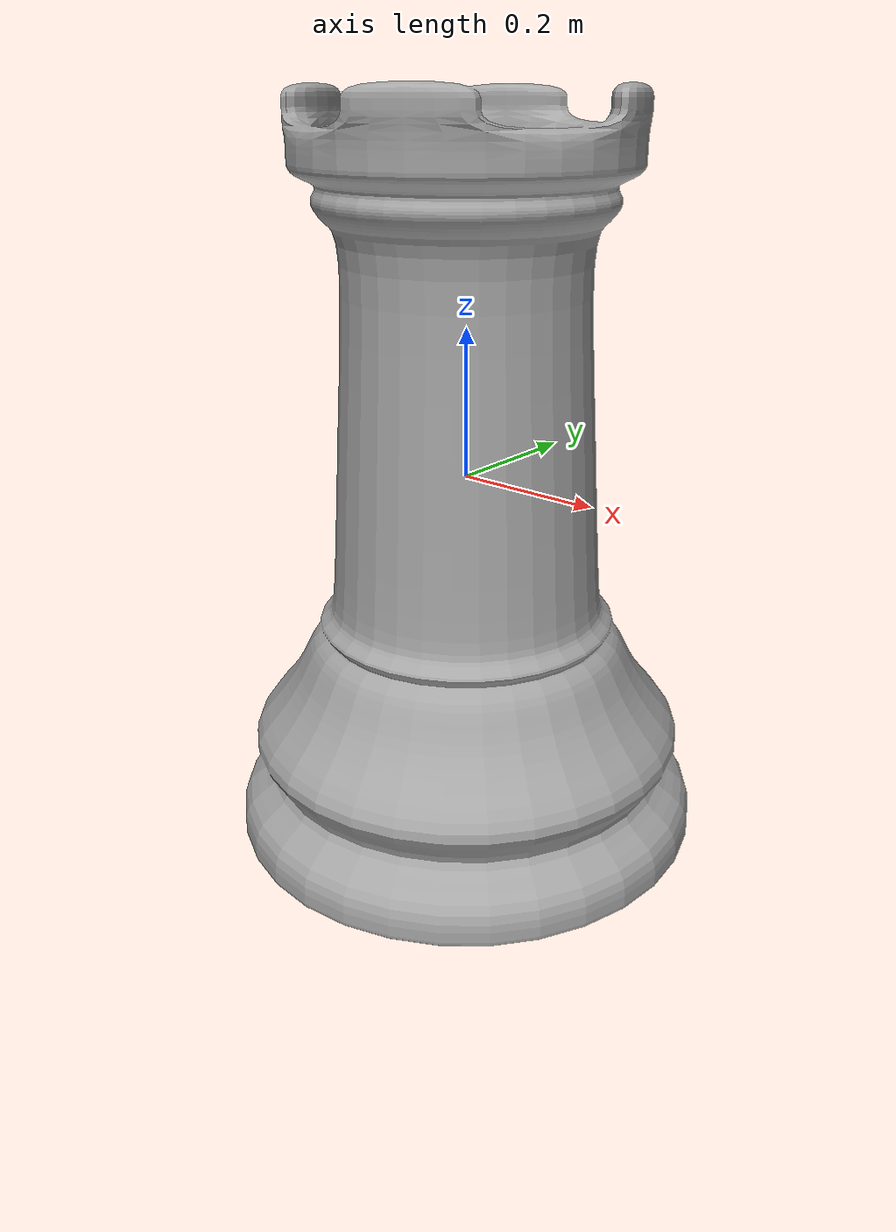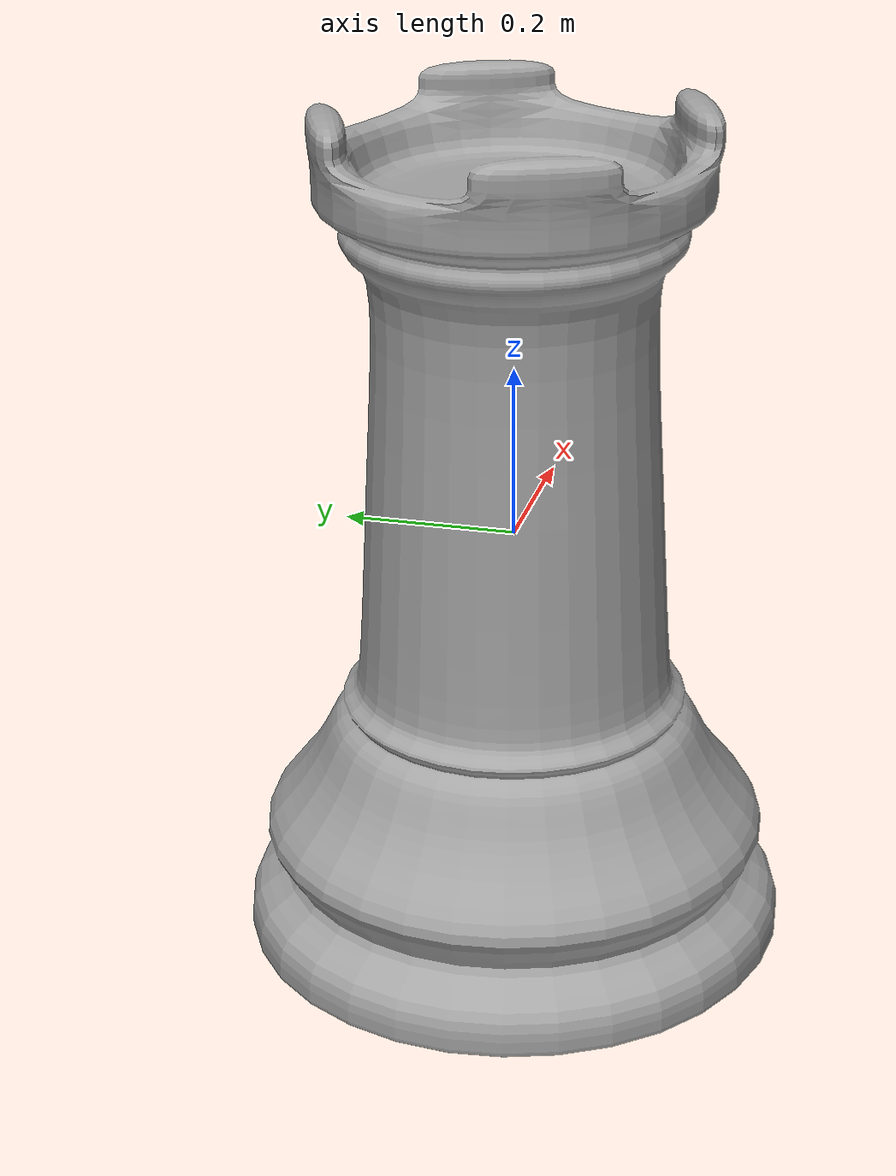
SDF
<?xml version="1.0" ?>
<sdf version="1.5">
  <model name='chess5'>
    <pose>0 0 0 0 0 0</pose>
    <static>1</static>
    <link name='body'>
      <collision name="chess5-coll">
        <pose>0 0 -0.5 0 0 0</pose>
        <geometry>
          <mesh>
            <uri>model://chess5/meshes/chess5.dae</uri>
          </mesh>
        </geometry>
      </collision>
      <visual name='chess5'>
        <cast_shadows>1</cast_shadows>
        <pose>0 0 -0.5 0 0 0</pose>
        <geometry>
          <mesh>
            <uri>model://chess5/meshes/chess5.dae</uri>
          </mesh>
        </geometry>
      </visual>
      <velocity_decay>
        <linear>0</linear>
        <angular>0</angular>
      </velocity_decay>
      <self_collide>0</self_collide>
      <kinematic>0</kinematic>
      <gravity>1</gravity>
    </link>
  </model>

</sdf>
